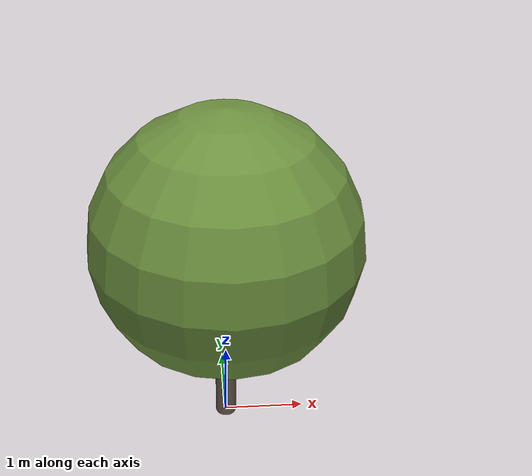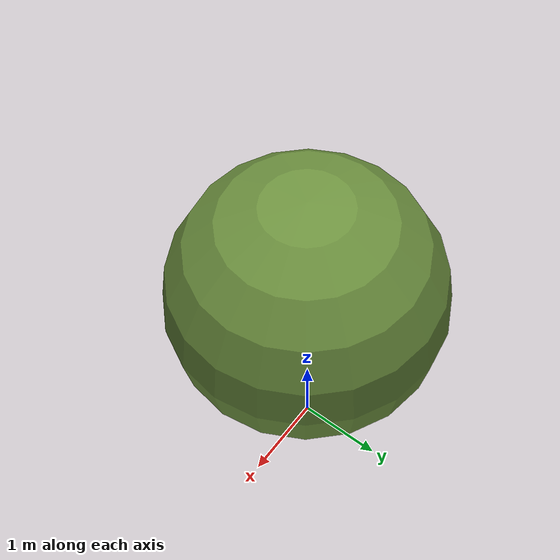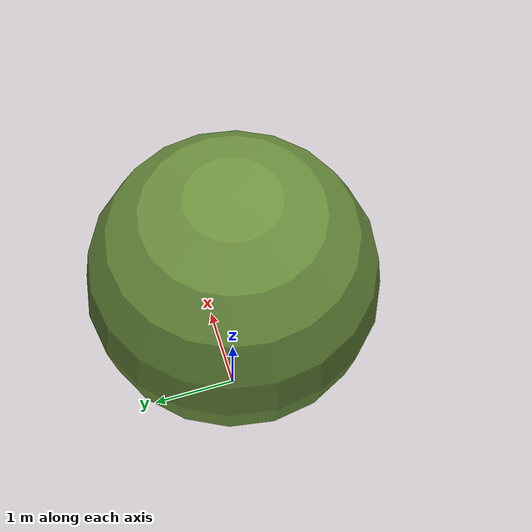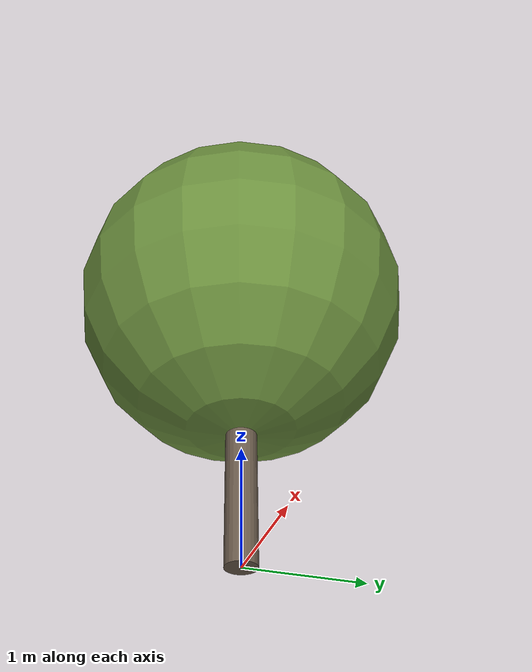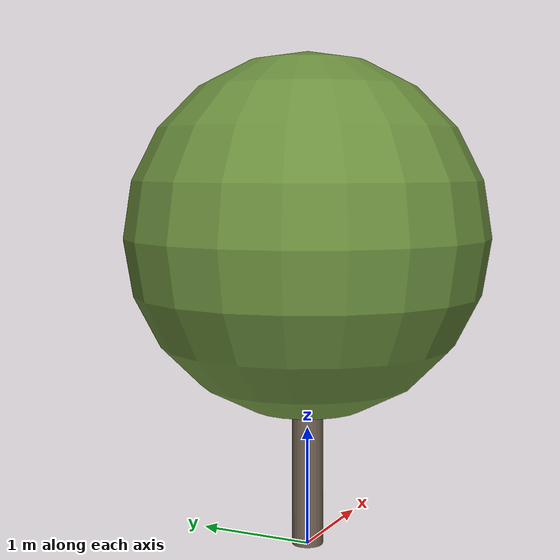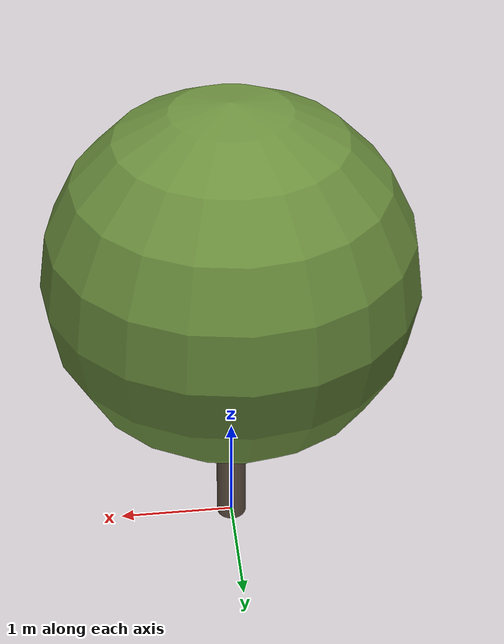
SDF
<?xml version="1.0" ?>
<sdf version="1.10">
  <model name="olivier_provence_14">
    <static>true</static>

    <!-- Tronc -->
    <link name="trunk">
      <pose>0 0 1.075417255894048 0 0 0</pose>
      <visual name="trunk_visual">
        <geometry>
          <cylinder>
            <radius>0.13059268795604173</radius>
            <length>2.150834511788096</length>
          </cylinder>
        </geometry>
        <material>
          <ambient>0.42 0.36 0.30 1</ambient>
          <diffuse>0.42 0.36 0.30 1</diffuse>
          <specular>0.1 0.1 0.1 1</specular>
        </material>
      </visual>
      <collision name="trunk_collision">
        <geometry>
          <cylinder>
            <radius>0.13059268795604173</radius>
            <length>2.150834511788096</length>
          </cylinder>
        </geometry>
      </collision>
    </link>

    <!-- Feuillage -->
    <link name="crown">
      <pose>0 0 2.6009132659476575 0 0 0</pose>
      <visual name="crown_visual">
        <geometry>
          <sphere>
              <radius>1.5002625138652046</radius>
            </sphere>
        </geometry>
        <material>
          <ambient>0.42 0.56 0.24 1</ambient>
          <diffuse>0.42 0.56 0.24 1</diffuse>
          <specular>0.1 0.1 0.1 1</specular>
        </material>
      </visual>
      <collision name="crown_collision">
        <geometry>
          <sphere>
            <radius>1.2002100110921639</radius>
          </sphere>
        </geometry>
      </collision>
    </link>

    <!-- Joint tronc-feuillage -->
    <joint name="trunk_crown_joint" type="fixed">
      <parent>trunk</parent>
      <child>crown</child>
    </joint>

  </model>
</sdf>
